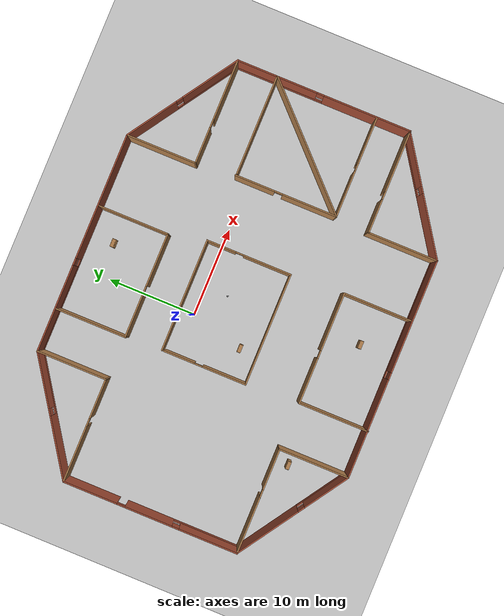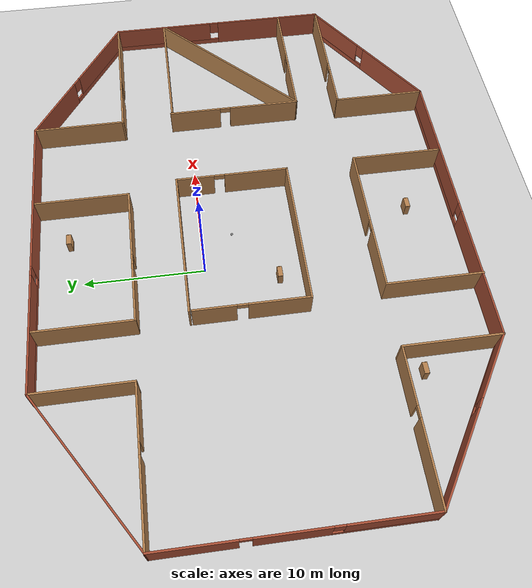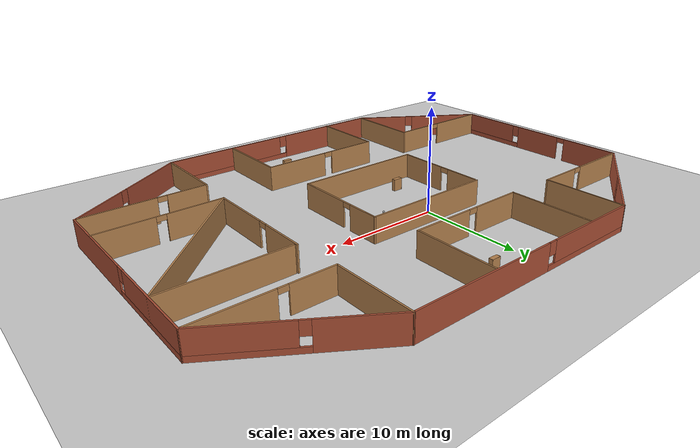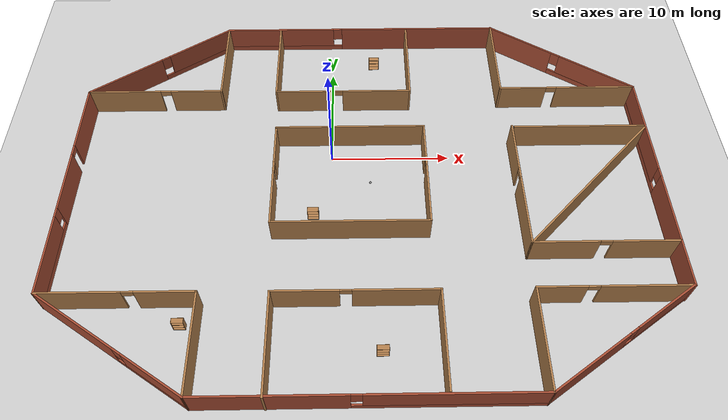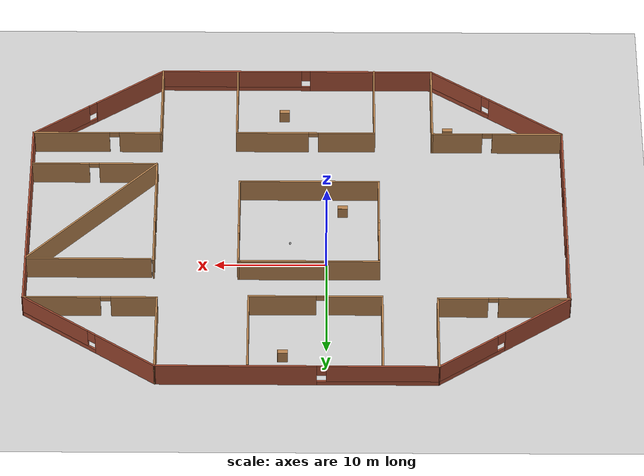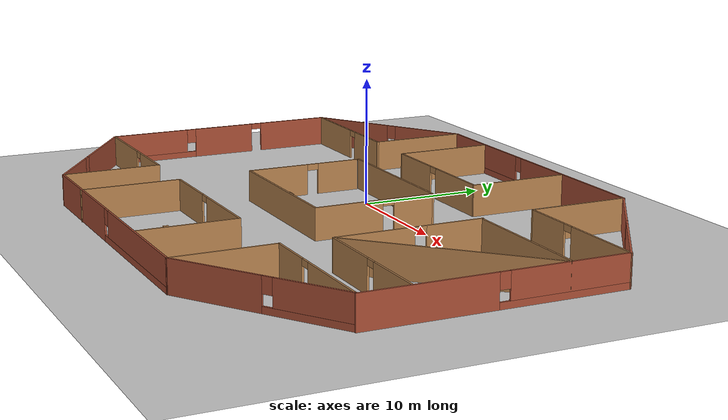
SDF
<sdf version="1.6">
 <world name="default">
  <plugin name="hello" filename="libhello.so"/>
  <model name="ground_plane">
   <static>1</static>
   <link name="link">
    <collision name="collision">
     <geometry><plane><normal>0 0 1</normal><size>100 100</size></plane></geometry>
     <surface><friction><ode><mu>100</mu><mu2>50</mu2></ode></friction></surface>
    </collision>
    <visual name="visual">
     <cast_shadows>0</cast_shadows>
     <geometry><plane><normal>0 0 1</normal><size>100 100</size></plane></geometry>
     <material>
      <script><uri>file://media/materials/scripts/gazebo.material</uri><name>Gazebo/Grey</name></script>
     </material>
    </visual>
   </link>
  </model>
  <gravity>0 0 -9.8</gravity>
  <magnetic_field>6e-06 2.3e-05 -4.2e-05</magnetic_field>
  <atmosphere type="adiabatic"/>
  <physics name="default_physics" default="0" type="ode">
   <max_step_size>0.001</max_step_size>
   <real_time_factor>1</real_time_factor>
   <real_time_update_rate>1000</real_time_update_rate>
  </physics>
  <scene><ambient>0.4 0.4 0.4 1</ambient><background>0.7 0.7 0.7 1</background><shadows>1</shadows></scene>
  <spherical_coordinates>
   <surface_model>EARTH_WGS84</surface_model>
   <latitude_deg>0</latitude_deg>
   <longitude_deg>0</longitude_deg>
   <elevation>0</elevation>
   <heading_deg>0</heading_deg>
  </spherical_coordinates>
  <model name="structure">
   <pose>2.6615 -4.00982 0 0 -0 0</pose>
   <link name="Wall_0">
    <pose>-24.193 0.018661 0 0 0 -1.5708</pose>
    <visual name="Wall_0_Visual_0">
     <pose>-6.90802 0 1.25 0 -0 0</pose>
     <geometry><box><size>6.18397 0.15 2.5</size></box></geometry>
     <material>
      <script><uri>file://media/materials/scripts/gazebo.material</uri><name>Gazebo/Bricks</name></script>
      <ambient>1 1 1 1</ambient>
     </material>
    </visual>
    <collision name="Wall_0_Collision_0">
     <geometry><box><size>6.18397 0.15 2.5</size></box></geometry>
     <pose>-6.90802 0 1.25 0 -0 0</pose>
    </collision>
    <visual name="Wall_0_Visual_1">
     <pose>-0.221667 0 1.25 0 -0 0</pose>
     <geometry><box><size>5.38873 0.15 2.5</size></box></geometry>
     <material>
      <script><uri>file://media/materials/scripts/gazebo.material</uri><name>Gazebo/Bricks</name></script>
      <ambient>1 1 1 1</ambient>
     </material>
    </visual>
    <collision name="Wall_0_Collision_1">
     <geometry><box><size>5.38873 0.15 2.5</size></box></geometry>
     <pose>-0.221667 0 1.25 0 -0 0</pose>
    </collision>
    <visual name="Wall_0_Visual_2">
     <pose>6.23635 0 0.25 0 -0 0</pose>
     <geometry><box><size>7.5273 0.15 0.5</size></box></geometry>
     <material>
      <script><uri>file://media/materials/scripts/gazebo.material</uri><name>Gazebo/Bricks</name></script>
      <ambient>1 1 1 1</ambient>
     </material>
    </visual>
    <collision name="Wall_0_Collision_2">
     <geometry><box><size>7.5273 0.15 0.5</size></box></geometry>
     <pose>6.23635 0 0.25 0 -0 0</pose>
    </collision>
    <visual name="Wall_0_Visual_3">
     <pose>6.63635 0 1.5 0 -0 0</pose>
     <geometry><box><size>6.7273 0.15 2</size></box></geometry>
     <material>
      <script><uri>file://media/materials/scripts/gazebo.material</uri><name>Gazebo/Bricks</name></script>
      <ambient>1 1 1 1</ambient>
     </material>
    </visual>
    <collision name="Wall_0_Collision_3">
     <geometry><box><size>6.7273 0.15 2</size></box></geometry>
     <pose>6.63635 0 1.5 0 -0 0</pose>
    </collision>
    <visual name="Wall_0_Visual_4">
     <pose>2.8727 0 1.9 0 -0 0</pose>
     <geometry><box><size>0.8 0.15 1.2</size></box></geometry>
     <material>
      <script><uri>file://media/materials/scripts/gazebo.material</uri><name>Gazebo/Bricks</name></script>
      <ambient>1 1 1 1</ambient>
     </material>
    </visual>
    <collision name="Wall_0_Collision_4">
     <geometry><box><size>0.8 0.15 1.2</size></box></geometry>
     <pose>2.8727 0 1.9 0 -0 0</pose>
    </collision>
    <visual name="Wall_0_Visual_5">
     <pose>-3.36603 0 2.25 0 -0 0</pose>
     <geometry><box><size>0.9 0.15 0.5</size></box></geometry>
     <material>
      <script><uri>file://media/materials/scripts/gazebo.material</uri><name>Gazebo/Bricks</name></script>
      <ambient>1 1 1 1</ambient>
     </material>
    </visual>
    <collision name="Wall_0_Collision_5">
     <geometry><box><size>0.9 0.15 0.5</size></box></geometry>
     <pose>-3.36603 0 2.25 0 -0 0</pose>
    </collision>
   </link>
   <link name="Wall_11">
    <pose>0.082031 -17.7563 0 0 -0 0</pose>
    <visual name="Wall_11_Visual_0">
     <pose>-6.85381 0 1.25 0 -0 0</pose>
     <geometry><box><size>11.2924 0.15 2.5</size></box></geometry>
     <material>
      <script><uri>file://media/materials/scripts/gazebo.material</uri><name>Gazebo/Bricks</name></script>
      <ambient>1 1 1 1</ambient>
     </material>
    </visual>
    <collision name="Wall_11_Collision_0">
     <geometry><box><size>11.2924 0.15 2.5</size></box></geometry>
     <pose>-6.85381 0 1.25 0 -0 0</pose>
    </collision>
    <visual name="Wall_11_Visual_1">
     <pose>5.64619 0 0.25 0 -0 0</pose>
     <geometry><box><size>13.7076 0.15 0.5</size></box></geometry>
     <material>
      <script><uri>file://media/materials/scripts/gazebo.material</uri><name>Gazebo/Bricks</name></script>
      <ambient>1 1 1 1</ambient>
     </material>
    </visual>
    <collision name="Wall_11_Collision_1">
     <geometry><box><size>13.7076 0.15 0.5</size></box></geometry>
     <pose>5.64619 0 0.25 0 -0 0</pose>
    </collision>
    <visual name="Wall_11_Visual_2">
     <pose>6.04619 0 1.5 0 -0 0</pose>
     <geometry><box><size>12.9076 0.15 2</size></box></geometry>
     <material>
      <script><uri>file://media/materials/scripts/gazebo.material</uri><name>Gazebo/Bricks</name></script>
      <ambient>1 1 1 1</ambient>
     </material>
    </visual>
    <collision name="Wall_11_Collision_2">
     <geometry><box><size>12.9076 0.15 2</size></box></geometry>
     <pose>6.04619 0 1.5 0 -0 0</pose>
    </collision>
    <visual name="Wall_11_Visual_3">
     <pose>-0.807615 0 1.9 0 -0 0</pose>
     <geometry><box><size>0.8 0.15 1.2</size></box></geometry>
     <material>
      <script><uri>file://media/materials/scripts/gazebo.material</uri><name>Gazebo/Bricks</name></script>
      <ambient>1 1 1 1</ambient>
     </material>
    </visual>
    <collision name="Wall_11_Collision_3">
     <geometry><box><size>0.8 0.15 1.2</size></box></geometry>
     <pose>-0.807615 0 1.9 0 -0 0</pose>
    </collision>
   </link>
   <link name="Wall_17">
    <pose>24.1932 0.018623 0 0 -0 1.57081</pose>
    <visual name="Wall_17_Visual_0">
     <pose>-4.99968 0 1.25 0 -0 0</pose>
     <geometry><box><size>10.0006 0.15 2.5</size></box></geometry>
     <material>
      <script><uri>file://media/materials/scripts/gazebo.material</uri><name>Gazebo/Bricks</name></script>
      <ambient>1 1 1 1</ambient>
     </material>
    </visual>
    <collision name="Wall_17_Collision_0">
     <geometry><box><size>10.0006 0.15 2.5</size></box></geometry>
     <pose>-4.99968 0 1.25 0 -0 0</pose>
    </collision>
    <visual name="Wall_17_Visual_1">
     <pose>5.00032 0 0.25 0 -0 0</pose>
     <geometry><box><size>9.99935 0.15 0.5</size></box></geometry>
     <material>
      <script><uri>file://media/materials/scripts/gazebo.material</uri><name>Gazebo/Bricks</name></script>
      <ambient>1 1 1 1</ambient>
     </material>
    </visual>
    <collision name="Wall_17_Collision_1">
     <geometry><box><size>9.99935 0.15 0.5</size></box></geometry>
     <pose>5.00032 0 0.25 0 -0 0</pose>
    </collision>
    <visual name="Wall_17_Visual_2">
     <pose>5.40032 0 1.5 0 -0 0</pose>
     <geometry><box><size>9.19935 0.15 2</size></box></geometry>
     <material>
      <script><uri>file://media/materials/scripts/gazebo.material</uri><name>Gazebo/Bricks</name></script>
      <ambient>1 1 1 1</ambient>
     </material>
    </visual>
    <collision name="Wall_17_Collision_2">
     <geometry><box><size>9.19935 0.15 2</size></box></geometry>
     <pose>5.40032 0 1.5 0 -0 0</pose>
    </collision>
    <visual name="Wall_17_Visual_3">
     <pose>0.400646 0 1.9 0 -0 0</pose>
     <geometry><box><size>0.8 0.15 1.2</size></box></geometry>
     <material>
      <script><uri>file://media/materials/scripts/gazebo.material</uri><name>Gazebo/Bricks</name></script>
      <ambient>1 1 1 1</ambient>
     </material>
    </visual>
    <collision name="Wall_17_Collision_3">
     <geometry><box><size>0.8 0.15 1.2</size></box></geometry>
     <pose>0.400646 0 1.9 0 -0 0</pose>
    </collision>
   </link>
   <link name="Wall_19">
    <collision name="Wall_19_Collision">
     <geometry><box><size>8 0.15 2.5</size></box></geometry>
     <pose>0 0 1.25 0 -0 0</pose>
    </collision>
    <visual name="Wall_19_Visual">
     <pose>0 0 1.25 0 -0 0</pose>
     <geometry><box><size>8 0.15 2.5</size></box></geometry>
     <material>
      <script><uri>file://media/materials/scripts/gazebo.material</uri><name>Gazebo/Wood</name></script>
      <ambient>1 1 1 1</ambient>
     </material>
    </visual>
    <pose>12.507 -13.8313 0 0 -0 1.5708</pose>
   </link>
   <link name="Wall_21">
    <pose>18.307 -9.90634 0 0 -0 0</pose>
    <visual name="Wall_21_Visual_0">
     <pose>-3.92627 0 1.25 0 -0 0</pose>
     <geometry><box><size>3.89747 0.15 2.5</size></box></geometry>
     <material>
      <script><uri>file://media/materials/scripts/gazebo.material</uri><name>Gazebo/Wood</name></script>
      <ambient>1 1 1 1</ambient>
     </material>
    </visual>
    <collision name="Wall_21_Collision_0">
     <geometry><box><size>3.89747 0.15 2.5</size></box></geometry>
     <pose>-3.92627 0 1.25 0 -0 0</pose>
    </collision>
    <visual name="Wall_21_Visual_1">
     <pose>2.39873 0 1.25 0 -0 0</pose>
     <geometry><box><size>6.95253 0.15 2.5</size></box></geometry>
     <material>
      <script><uri>file://media/materials/scripts/gazebo.material</uri><name>Gazebo/Wood</name></script>
      <ambient>1 1 1 1</ambient>
     </material>
    </visual>
    <collision name="Wall_21_Collision_1">
     <geometry><box><size>6.95253 0.15 2.5</size></box></geometry>
     <pose>2.39873 0 1.25 0 -0 0</pose>
    </collision>
    <visual name="Wall_21_Visual_2">
     <pose>-1.52753 0 2.25 0 -0 0</pose>
     <geometry><box><size>0.9 0.15 0.5</size></box></geometry>
     <material>
      <script><uri>file://media/materials/scripts/gazebo.material</uri><name>Gazebo/Wood</name></script>
      <ambient>1 1 1 1</ambient>
     </material>
    </visual>
    <collision name="Wall_21_Collision_2">
     <geometry><box><size>0.9 0.15 0.5</size></box></geometry>
     <pose>-1.52753 0 2.25 0 -0 0</pose>
    </collision>
   </link>
   <link name="Wall_23">
    <pose>18.2681 9.94359 0 0 -0 3.14159</pose>
    <visual name="Wall_23_Visual_0">
     <pose>-2.5252 0 1.25 0 -0 0</pose>
     <geometry><box><size>6.94961 0.15 2.5</size></box></geometry>
     <material>
      <script><uri>file://media/materials/scripts/gazebo.material</uri><name>Gazebo/Wood</name></script>
      <ambient>1 1 1 1</ambient>
     </material>
    </visual>
    <collision name="Wall_23_Collision_0">
     <geometry><box><size>6.94961 0.15 2.5</size></box></geometry>
     <pose>-2.5252 0 1.25 0 -0 0</pose>
    </collision>
    <visual name="Wall_23_Visual_1">
     <pose>3.9248 0 1.25 0 -0 0</pose>
     <geometry><box><size>4.15039 0.15 2.5</size></box></geometry>
     <material>
      <script><uri>file://media/materials/scripts/gazebo.material</uri><name>Gazebo/Wood</name></script>
      <ambient>1 1 1 1</ambient>
     </material>
    </visual>
    <collision name="Wall_23_Collision_1">
     <geometry><box><size>4.15039 0.15 2.5</size></box></geometry>
     <pose>3.9248 0 1.25 0 -0 0</pose>
    </collision>
    <visual name="Wall_23_Visual_2">
     <pose>1.3996 0 2.25 0 -0 0</pose>
     <geometry><box><size>0.9 0.15 0.5</size></box></geometry>
     <material>
      <script><uri>file://media/materials/scripts/gazebo.material</uri><name>Gazebo/Wood</name></script>
      <ambient>1 1 1 1</ambient>
     </material>
    </visual>
    <collision name="Wall_23_Collision_2">
     <geometry><box><size>0.9 0.15 0.5</size></box></geometry>
     <pose>1.3996 0 2.25 0 -0 0</pose>
    </collision>
   </link>
   <link name="Wall_27">
    <collision name="Wall_27_Collision">
     <geometry><box><size>8 0.15 2.5</size></box></geometry>
     <pose>0 0 1.25 0 -0 0</pose>
    </collision>
    <visual name="Wall_27_Visual">
     <pose>0 0 1.25 0 -0 0</pose>
     <geometry><box><size>8 0.15 2.5</size></box></geometry>
     <material>
      <script><uri>file://media/materials/scripts/gazebo.material</uri><name>Gazebo/Wood</name></script>
      <ambient>1 1 1 1</ambient>
     </material>
    </visual>
    <pose>12.3431 13.8686 0 0 -0 1.5708</pose>
   </link>
   <link name="Wall_29">
    <pose>-0.081897 17.7936 0 0 -0 3.14159</pose>
    <visual name="Wall_29_Visual_0">
     <pose>-5.3765 0 1.25 0 -0 0</pose>
     <geometry><box><size>14.247 0.15 2.5</size></box></geometry>
     <material>
      <script><uri>file://media/materials/scripts/gazebo.material</uri><name>Gazebo/Bricks</name></script>
      <ambient>1 1 1 1</ambient>
     </material>
    </visual>
    <collision name="Wall_29_Collision_0">
     <geometry><box><size>14.247 0.15 2.5</size></box></geometry>
     <pose>-5.3765 0 1.25 0 -0 0</pose>
    </collision>
    <visual name="Wall_29_Visual_1">
     <pose>7.1235 0 0.25 0 -0 0</pose>
     <geometry><box><size>10.753 0.15 0.5</size></box></geometry>
     <material>
      <script><uri>file://media/materials/scripts/gazebo.material</uri><name>Gazebo/Bricks</name></script>
      <ambient>1 1 1 1</ambient>
     </material>
    </visual>
    <collision name="Wall_29_Collision_1">
     <geometry><box><size>10.753 0.15 0.5</size></box></geometry>
     <pose>7.1235 0 0.25 0 -0 0</pose>
    </collision>
    <visual name="Wall_29_Visual_2">
     <pose>7.5235 0 1.5 0 -0 0</pose>
     <geometry><box><size>9.953 0.15 2</size></box></geometry>
     <material>
      <script><uri>file://media/materials/scripts/gazebo.material</uri><name>Gazebo/Bricks</name></script>
      <ambient>1 1 1 1</ambient>
     </material>
    </visual>
    <collision name="Wall_29_Collision_2">
     <geometry><box><size>9.953 0.15 2</size></box></geometry>
     <pose>7.5235 0 1.5 0 -0 0</pose>
    </collision>
    <visual name="Wall_29_Visual_3">
     <pose>2.147 0 1.9 0 -0 0</pose>
     <geometry><box><size>0.8 0.15 1.2</size></box></geometry>
     <material>
      <script><uri>file://media/materials/scripts/gazebo.material</uri><name>Gazebo/Bricks</name></script>
      <ambient>1 1 1 1</ambient>
     </material>
    </visual>
    <collision name="Wall_29_Collision_3">
     <geometry><box><size>0.8 0.15 1.2</size></box></geometry>
     <pose>2.147 0 1.9 0 -0 0</pose>
    </collision>
   </link>
   <link name="Wall_31">
    <collision name="Wall_31_Collision">
     <geometry><box><size>8 0.15 2.5</size></box></geometry>
     <pose>0 0 1.25 0 -0 0</pose>
    </collision>
    <visual name="Wall_31_Visual">
     <pose>0 0 1.25 0 -0 0</pose>
     <geometry><box><size>8 0.15 2.5</size></box></geometry>
     <material>
      <script><uri>file://media/materials/scripts/gazebo.material</uri><name>Gazebo/Wood</name></script>
      <ambient>1 1 1 1</ambient>
     </material>
    </visual>
    <pose>-12.5069 13.8686 0 0 0 -1.5708</pose>
   </link>
   <link name="Wall_33">
    <pose>-18.3499 9.94362 0 0 -0 3.14159</pose>
    <visual name="Wall_33_Visual_0">
     <pose>-3.649 0 1.25 0 -0 0</pose>
     <geometry><box><size>4.53806 0.15 2.5</size></box></geometry>
     <material>
      <script><uri>file://media/materials/scripts/gazebo.material</uri><name>Gazebo/Wood</name></script>
      <ambient>1 1 1 1</ambient>
     </material>
    </visual>
    <collision name="Wall_33_Collision_0">
     <geometry><box><size>4.53806 0.15 2.5</size></box></geometry>
     <pose>-3.649 0 1.25 0 -0 0</pose>
    </collision>
    <visual name="Wall_33_Visual_1">
     <pose>2.71903 0 1.25 0 -0 0</pose>
     <geometry><box><size>6.39801 0.15 2.5</size></box></geometry>
     <material>
      <script><uri>file://media/materials/scripts/gazebo.material</uri><name>Gazebo/Wood</name></script>
      <ambient>1 1 1 1</ambient>
     </material>
    </visual>
    <collision name="Wall_33_Collision_1">
     <geometry><box><size>6.39801 0.15 2.5</size></box></geometry>
     <pose>2.71903 0 1.25 0 -0 0</pose>
    </collision>
    <visual name="Wall_33_Visual_2">
     <pose>-0.929972 0 2.25 0 -0 0</pose>
     <geometry><box><size>0.9 0.15 0.5</size></box></geometry>
     <material>
      <script><uri>file://media/materials/scripts/gazebo.material</uri><name>Gazebo/Wood</name></script>
      <ambient>1 1 1 1</ambient>
     </material>
    </visual>
    <collision name="Wall_33_Collision_2">
     <geometry><box><size>0.9 0.15 0.5</size></box></geometry>
     <pose>-0.929972 0 2.25 0 -0 0</pose>
    </collision>
   </link>
   <link name="Wall_35">
    <pose>-18.3499 13.8686 0 0 -0 0.591502</pose>
    <visual name="Wall_35_Visual_0">
     <pose>-3.5498 0 1.25 0 -0 0</pose>
     <geometry><box><size>7.12825 0.15 2.5</size></box></geometry>
     <material>
      <script><uri>file://media/materials/scripts/gazebo.material</uri><name>Gazebo/Bricks</name></script>
      <ambient>1 1 1 1</ambient>
     </material>
    </visual>
    <collision name="Wall_35_Collision_0">
     <geometry><box><size>7.12825 0.15 2.5</size></box></geometry>
     <pose>-3.5498 0 1.25 0 -0 0</pose>
    </collision>
    <visual name="Wall_35_Visual_1">
     <pose>3.56413 0 0.25 0 -0 0</pose>
     <geometry><box><size>7.09959 0.15 0.5</size></box></geometry>
     <material>
      <script><uri>file://media/materials/scripts/gazebo.material</uri><name>Gazebo/Bricks</name></script>
      <ambient>1 1 1 1</ambient>
     </material>
    </visual>
    <collision name="Wall_35_Collision_1">
     <geometry><box><size>7.09959 0.15 0.5</size></box></geometry>
     <pose>3.56413 0 0.25 0 -0 0</pose>
    </collision>
    <visual name="Wall_35_Visual_2">
     <pose>3.96413 0 1.5 0 -0 0</pose>
     <geometry><box><size>6.29959 0.15 2</size></box></geometry>
     <material>
      <script><uri>file://media/materials/scripts/gazebo.material</uri><name>Gazebo/Bricks</name></script>
      <ambient>1 1 1 1</ambient>
     </material>
    </visual>
    <collision name="Wall_35_Collision_2">
     <geometry><box><size>6.29959 0.15 2</size></box></geometry>
     <pose>3.96413 0 1.5 0 -0 0</pose>
    </collision>
    <visual name="Wall_35_Visual_3">
     <pose>0.414331 0 1.9 0 -0 0</pose>
     <geometry><box><size>0.8 0.15 1.2</size></box></geometry>
     <material>
      <script><uri>file://media/materials/scripts/gazebo.material</uri><name>Gazebo/Bricks</name></script>
      <ambient>1 1 1 1</ambient>
     </material>
    </visual>
    <collision name="Wall_35_Collision_3">
     <geometry><box><size>0.8 0.15 1.2</size></box></geometry>
     <pose>0.414331 0 1.9 0 -0 0</pose>
    </collision>
   </link>
   <link name="Wall_37">
    <pose>18.2681 13.8686 0 0 0 -0.585076</pose>
    <visual name="Wall_37_Visual_0">
     <pose>-3.98995 0 1.25 0 -0 0</pose>
     <geometry><box><size>6.38435 0.15 2.5</size></box></geometry>
     <material>
      <script><uri>file://media/materials/scripts/gazebo.material</uri><name>Gazebo/Bricks</name></script>
      <ambient>1 1 1 1</ambient>
     </material>
    </visual>
    <collision name="Wall_37_Collision_0">
     <geometry><box><size>6.38435 0.15 2.5</size></box></geometry>
     <pose>-3.98995 0 1.25 0 -0 0</pose>
    </collision>
    <visual name="Wall_37_Visual_1">
     <pose>3.19217 0 0.25 0 -0 0</pose>
     <geometry><box><size>7.97991 0.15 0.5</size></box></geometry>
     <material>
      <script><uri>file://media/materials/scripts/gazebo.material</uri><name>Gazebo/Bricks</name></script>
      <ambient>1 1 1 1</ambient>
     </material>
    </visual>
    <collision name="Wall_37_Collision_1">
     <geometry><box><size>7.97991 0.15 0.5</size></box></geometry>
     <pose>3.19217 0 0.25 0 -0 0</pose>
    </collision>
    <visual name="Wall_37_Visual_2">
     <pose>3.59217 0 1.5 0 -0 0</pose>
     <geometry><box><size>7.17991 0.15 2</size></box></geometry>
     <material>
      <script><uri>file://media/materials/scripts/gazebo.material</uri><name>Gazebo/Bricks</name></script>
      <ambient>1 1 1 1</ambient>
     </material>
    </visual>
    <collision name="Wall_37_Collision_2">
     <geometry><box><size>7.17991 0.15 2</size></box></geometry>
     <pose>3.59217 0 1.5 0 -0 0</pose>
    </collision>
    <visual name="Wall_37_Visual_3">
     <pose>-0.397779 0 1.9 0 -0 0</pose>
     <geometry><box><size>0.8 0.15 1.2</size></box></geometry>
     <material>
      <script><uri>file://media/materials/scripts/gazebo.material</uri><name>Gazebo/Bricks</name></script>
      <ambient>1 1 1 1</ambient>
     </material>
    </visual>
    <collision name="Wall_37_Collision_3">
     <geometry><box><size>0.8 0.15 1.2</size></box></geometry>
     <pose>-0.397779 0 1.9 0 -0 0</pose>
    </collision>
   </link>
   <link name="Wall_40">
    <pose>18.307 -13.8313 0 0 -0 0.594933</pose>
    <visual name="Wall_40_Visual_0">
     <pose>-3.38232 0 1.25 0 -0 0</pose>
     <geometry><box><size>7.39187 0.15 2.5</size></box></geometry>
     <material>
      <script><uri>file://media/materials/scripts/gazebo.material</uri><name>Gazebo/Bricks</name></script>
      <ambient>1 1 1 1</ambient>
     </material>
    </visual>
    <collision name="Wall_40_Collision_0">
     <geometry><box><size>7.39187 0.15 2.5</size></box></geometry>
     <pose>-3.38232 0 1.25 0 -0 0</pose>
    </collision>
    <visual name="Wall_40_Visual_1">
     <pose>3.69593 0 0.25 0 -0 0</pose>
     <geometry><box><size>6.76465 0.15 0.5</size></box></geometry>
     <material>
      <script><uri>file://media/materials/scripts/gazebo.material</uri><name>Gazebo/Bricks</name></script>
      <ambient>1 1 1 1</ambient>
     </material>
    </visual>
    <collision name="Wall_40_Collision_1">
     <geometry><box><size>6.76465 0.15 0.5</size></box></geometry>
     <pose>3.69593 0 0.25 0 -0 0</pose>
    </collision>
    <visual name="Wall_40_Visual_2">
     <pose>4.09593 0 1.5 0 -0 0</pose>
     <geometry><box><size>5.96465 0.15 2</size></box></geometry>
     <material>
      <script><uri>file://media/materials/scripts/gazebo.material</uri><name>Gazebo/Bricks</name></script>
      <ambient>1 1 1 1</ambient>
     </material>
    </visual>
    <collision name="Wall_40_Collision_2">
     <geometry><box><size>5.96465 0.15 2</size></box></geometry>
     <pose>4.09593 0 1.5 0 -0 0</pose>
    </collision>
    <visual name="Wall_40_Visual_3">
     <pose>0.713612 0 1.9 0 -0 0</pose>
     <geometry><box><size>0.8 0.15 1.2</size></box></geometry>
     <material>
      <script><uri>file://media/materials/scripts/gazebo.material</uri><name>Gazebo/Bricks</name></script>
      <ambient>1 1 1 1</ambient>
     </material>
    </visual>
    <collision name="Wall_40_Collision_3">
     <geometry><box><size>0.8 0.15 1.2</size></box></geometry>
     <pose>0.713612 0 1.9 0 -0 0</pose>
    </collision>
   </link>
   <link name="Wall_43">
    <pose>-18.268 -13.8313 0 0 0 -0.585076</pose>
    <visual name="Wall_43_Visual_0">
     <pose>-3.22778 0 1.25 0 -0 0</pose>
     <geometry><box><size>7.9087 0.15 2.5</size></box></geometry>
     <material>
      <script><uri>file://media/materials/scripts/gazebo.material</uri><name>Gazebo/Bricks</name></script>
      <ambient>1 1 1 1</ambient>
     </material>
    </visual>
    <collision name="Wall_43_Collision_0">
     <geometry><box><size>7.9087 0.15 2.5</size></box></geometry>
     <pose>-3.22778 0 1.25 0 -0 0</pose>
    </collision>
    <visual name="Wall_43_Visual_1">
     <pose>3.95435 0 0.25 0 -0 0</pose>
     <geometry><box><size>6.45555 0.15 0.5</size></box></geometry>
     <material>
      <script><uri>file://media/materials/scripts/gazebo.material</uri><name>Gazebo/Bricks</name></script>
      <ambient>1 1 1 1</ambient>
     </material>
    </visual>
    <collision name="Wall_43_Collision_1">
     <geometry><box><size>6.45555 0.15 0.5</size></box></geometry>
     <pose>3.95435 0 0.25 0 -0 0</pose>
    </collision>
    <visual name="Wall_43_Visual_2">
     <pose>4.35435 0 1.5 0 -0 0</pose>
     <geometry><box><size>5.65555 0.15 2</size></box></geometry>
     <material>
      <script><uri>file://media/materials/scripts/gazebo.material</uri><name>Gazebo/Bricks</name></script>
      <ambient>1 1 1 1</ambient>
     </material>
    </visual>
    <collision name="Wall_43_Collision_2">
     <geometry><box><size>5.65555 0.15 2</size></box></geometry>
     <pose>4.35435 0 1.5 0 -0 0</pose>
    </collision>
    <visual name="Wall_43_Visual_3">
     <pose>1.12657 0 1.9 0 -0 0</pose>
     <geometry><box><size>0.8 0.15 1.2</size></box></geometry>
     <material>
      <script><uri>file://media/materials/scripts/gazebo.material</uri><name>Gazebo/Bricks</name></script>
      <ambient>1 1 1 1</ambient>
     </material>
    </visual>
    <collision name="Wall_43_Collision_3">
     <geometry><box><size>0.8 0.15 1.2</size></box></geometry>
     <pose>1.12657 0 1.9 0 -0 0</pose>
    </collision>
   </link>
   <link name="Wall_46">
    <collision name="Wall_46_Collision">
     <geometry><box><size>8 0.15 2.5</size></box></geometry>
     <pose>0 0 1.25 0 -0 0</pose>
    </collision>
    <visual name="Wall_46_Visual">
     <pose>0 0 1.25 0 -0 0</pose>
     <geometry><box><size>8 0.15 2.5</size></box></geometry>
     <material>
      <script><uri>file://media/materials/scripts/gazebo.material</uri><name>Gazebo/Wood</name></script>
      <ambient>1 1 1 1</ambient>
     </material>
    </visual>
    <pose>-7.03517 -13.8977 0 0 -0 1.5708</pose>
   </link>
   <link name="Wall_47">
    <pose>-0.735172 -9.97266 0 0 -0 0</pose>
    <visual name="Wall_47_Visual_0">
     <pose>-3.7685 0 1.25 0 -0 0</pose>
     <geometry><box><size>5.213 0.15 2.5</size></box></geometry>
     <material>
      <script><uri>file://media/materials/scripts/gazebo.material</uri><name>Gazebo/Wood</name></script>
      <ambient>0.996078 0.47451 0.0196078 1</ambient>
     </material>
    </visual>
    <collision name="Wall_47_Collision_0">
     <geometry><box><size>5.213 0.15 2.5</size></box></geometry>
     <pose>-3.7685 0 1.25 0 -0 0</pose>
    </collision>
    <visual name="Wall_47_Visual_1">
     <pose>3.0565 0 1.25 0 -0 0</pose>
     <geometry><box><size>6.637 0.15 2.5</size></box></geometry>
     <material>
      <script><uri>file://media/materials/scripts/gazebo.material</uri><name>Gazebo/Wood</name></script>
      <ambient>0.996078 0.47451 0.0196078 1</ambient>
     </material>
    </visual>
    <collision name="Wall_47_Collision_1">
     <geometry><box><size>6.637 0.15 2.5</size></box></geometry>
     <pose>3.0565 0 1.25 0 -0 0</pose>
    </collision>
    <visual name="Wall_47_Visual_2">
     <pose>-0.712002 0 2.25 0 -0 0</pose>
     <geometry><box><size>0.9 0.15 0.5</size></box></geometry>
     <material>
      <script><uri>file://media/materials/scripts/gazebo.material</uri><name>Gazebo/Wood</name></script>
      <ambient>0.996078 0.47451 0.0196078 1</ambient>
     </material>
    </visual>
    <collision name="Wall_47_Collision_2">
     <geometry><box><size>0.9 0.15 0.5</size></box></geometry>
     <pose>-0.712002 0 2.25 0 -0 0</pose>
    </collision>
   </link>
   <link name="Wall_48">
    <collision name="Wall_48_Collision">
     <geometry><box><size>7.75 0.15 2.5</size></box></geometry>
     <pose>0 0 1.25 0 -0 0</pose>
    </collision>
    <visual name="Wall_48_Visual">
     <pose>0 0 1.25 0 -0 0</pose>
     <geometry><box><size>7.75 0.15 2.5</size></box></geometry>
     <material>
      <script><uri>file://media/materials/scripts/gazebo.material</uri><name>Gazebo/Wood</name></script>
      <ambient>1 1 1 1</ambient>
     </material>
    </visual>
    <pose>5.56483 -13.7727 0 0 0 -1.5708</pose>
   </link>
   <link name="Wall_51">
    <pose>12.7824 -0.282558 0 0 0 -1.5708</pose>
    <visual name="Wall_51_Visual_0">
     <pose>-3.58359 0 1.25 0 -0 0</pose>
     <geometry><box><size>4.58282 0.15 2.5</size></box></geometry>
     <material>
      <script><uri>file://media/materials/scripts/gazebo.material</uri><name>Gazebo/Wood</name></script>
      <ambient>1 1 1 1</ambient>
     </material>
    </visual>
    <collision name="Wall_51_Collision_0">
     <geometry><box><size>4.58282 0.15 2.5</size></box></geometry>
     <pose>-3.58359 0 1.25 0 -0 0</pose>
    </collision>
    <visual name="Wall_51_Visual_1">
     <pose>2.74141 0 1.25 0 -0 0</pose>
     <geometry><box><size>6.26718 0.15 2.5</size></box></geometry>
     <material>
      <script><uri>file://media/materials/scripts/gazebo.material</uri><name>Gazebo/Wood</name></script>
      <ambient>1 1 1 1</ambient>
     </material>
    </visual>
    <collision name="Wall_51_Collision_1">
     <geometry><box><size>6.26718 0.15 2.5</size></box></geometry>
     <pose>2.74141 0 1.25 0 -0 0</pose>
    </collision>
    <visual name="Wall_51_Visual_2">
     <pose>-0.842176 0 2.25 0 -0 0</pose>
     <geometry><box><size>0.9 0.15 0.5</size></box></geometry>
     <material>
      <script><uri>file://media/materials/scripts/gazebo.material</uri><name>Gazebo/Wood</name></script>
      <ambient>1 1 1 1</ambient>
     </material>
    </visual>
    <collision name="Wall_51_Collision_2">
     <geometry><box><size>0.9 0.15 0.5</size></box></geometry>
     <pose>-0.842176 0 2.25 0 -0 0</pose>
    </collision>
   </link>
   <link name="Wall_52">
    <pose>18.4574 -6.08256 0 0 -0 0</pose>
    <visual name="Wall_52_Visual_0">
     <pose>-3.09005 0 1.25 0 -0 0</pose>
     <geometry><box><size>5.3199 0.15 2.5</size></box></geometry>
     <material>
      <script><uri>file://media/materials/scripts/gazebo.material</uri><name>Gazebo/Wood</name></script>
      <ambient>1 1 1 1</ambient>
     </material>
    </visual>
    <collision name="Wall_52_Collision_0">
     <geometry><box><size>5.3199 0.15 2.5</size></box></geometry>
     <pose>-3.09005 0 1.25 0 -0 0</pose>
    </collision>
    <visual name="Wall_52_Visual_1">
     <pose>3.10995 0 1.25 0 -0 0</pose>
     <geometry><box><size>5.2801 0.15 2.5</size></box></geometry>
     <material>
      <script><uri>file://media/materials/scripts/gazebo.material</uri><name>Gazebo/Wood</name></script>
      <ambient>1 1 1 1</ambient>
     </material>
    </visual>
    <collision name="Wall_52_Collision_1">
     <geometry><box><size>5.2801 0.15 2.5</size></box></geometry>
     <pose>3.10995 0 1.25 0 -0 0</pose>
    </collision>
    <visual name="Wall_52_Visual_2">
     <pose>0.019897 0 2.25 0 -0 0</pose>
     <geometry><box><size>0.9 0.15 0.5</size></box></geometry>
     <material>
      <script><uri>file://media/materials/scripts/gazebo.material</uri><name>Gazebo/Wood</name></script>
      <ambient>1 1 1 1</ambient>
     </material>
    </visual>
    <collision name="Wall_52_Collision_2">
     <geometry><box><size>0.9 0.15 0.5</size></box></geometry>
     <pose>0.019897 0 2.25 0 -0 0</pose>
    </collision>
   </link>
   <link name="Wall_54">
    <collision name="Wall_54_Collision">
     <geometry><box><size>8 0.15 2.5</size></box></geometry>
     <pose>0 0 1.25 0 -0 0</pose>
    </collision>
    <visual name="Wall_54_Visual">
     <pose>0 0 1.25 0 -0 0</pose>
     <geometry><box><size>8 0.15 2.5</size></box></geometry>
     <material>
      <script><uri>file://media/materials/scripts/gazebo.material</uri><name>Gazebo/Wood</name></script>
      <ambient>1 1 1 1</ambient>
     </material>
    </visual>
    <pose>-7.60444 13.6894 0 0 0 -1.5708</pose>
   </link>
   <link name="Wall_55">
    <pose>-1.67944 9.76445 0 0 -0 0</pose>
    <visual name="Wall_55_Visual_0">
     <pose>-3.47778 0 1.25 0 -0 0</pose>
     <geometry><box><size>5.04444 0.15 2.5</size></box></geometry>
     <material>
      <script><uri>file://media/materials/scripts/gazebo.material</uri><name>Gazebo/Wood</name></script>
      <ambient>0.996078 0.47451 0.0196078 1</ambient>
     </material>
    </visual>
    <collision name="Wall_55_Collision_0">
     <geometry><box><size>5.04444 0.15 2.5</size></box></geometry>
     <pose>-3.47778 0 1.25 0 -0 0</pose>
    </collision>
    <visual name="Wall_55_Visual_1">
     <pose>2.97222 0 1.25 0 -0 0</pose>
     <geometry><box><size>6.05556 0.15 2.5</size></box></geometry>
     <material>
      <script><uri>file://media/materials/scripts/gazebo.material</uri><name>Gazebo/Wood</name></script>
      <ambient>0.996078 0.47451 0.0196078 1</ambient>
     </material>
    </visual>
    <collision name="Wall_55_Collision_1">
     <geometry><box><size>6.05556 0.15 2.5</size></box></geometry>
     <pose>2.97222 0 1.25 0 -0 0</pose>
    </collision>
    <visual name="Wall_55_Visual_2">
     <pose>-0.505564 0 2.25 0 -0 0</pose>
     <geometry><box><size>0.9 0.15 0.5</size></box></geometry>
     <material>
      <script><uri>file://media/materials/scripts/gazebo.material</uri><name>Gazebo/Wood</name></script>
      <ambient>0.996078 0.47451 0.0196078 1</ambient>
     </material>
    </visual>
    <collision name="Wall_55_Collision_2">
     <geometry><box><size>0.9 0.15 0.5</size></box></geometry>
     <pose>-0.505564 0 2.25 0 -0 0</pose>
    </collision>
   </link>
   <link name="Wall_56">
    <collision name="Wall_56_Collision">
     <geometry><box><size>8 0.15 2.5</size></box></geometry>
     <pose>0 0 1.25 0 -0 0</pose>
    </collision>
    <visual name="Wall_56_Visual">
     <pose>0 0 1.25 0 -0 0</pose>
     <geometry><box><size>8 0.15 2.5</size></box></geometry>
     <material>
      <script><uri>file://media/materials/scripts/gazebo.material</uri><name>Gazebo/Wood</name></script>
      <ambient>1 1 1 1</ambient>
     </material>
    </visual>
    <pose>4.24556 13.6894 0 0 -0 1.5708</pose>
   </link>
   <link name="Wall_6">
    <pose>-18.268 -9.90634 0 0 -0 0</pose>
    <visual name="Wall_6_Visual_0">
     <pose>-2.77939 0 1.25 0 -0 0</pose>
     <geometry><box><size>6.44121 0.15 2.5</size></box></geometry>
     <material>
      <script><uri>file://media/materials/scripts/gazebo.material</uri><name>Gazebo/Wood</name></script>
      <ambient>1 1 1 1</ambient>
     </material>
    </visual>
    <collision name="Wall_6_Collision_0">
     <geometry><box><size>6.44121 0.15 2.5</size></box></geometry>
     <pose>-2.77939 0 1.25 0 -0 0</pose>
    </collision>
    <visual name="Wall_6_Visual_1">
     <pose>3.67061 0 1.25 0 -0 0</pose>
     <geometry><box><size>4.65879 0.15 2.5</size></box></geometry>
     <material>
      <script><uri>file://media/materials/scripts/gazebo.material</uri><name>Gazebo/Wood</name></script>
      <ambient>1 1 1 1</ambient>
     </material>
    </visual>
    <collision name="Wall_6_Collision_1">
     <geometry><box><size>4.65879 0.15 2.5</size></box></geometry>
     <pose>3.67061 0 1.25 0 -0 0</pose>
    </collision>
    <visual name="Wall_6_Visual_2">
     <pose>0.891212 0 2.25 0 -0 0</pose>
     <geometry><box><size>0.9 0.15 0.5</size></box></geometry>
     <material>
      <script><uri>file://media/materials/scripts/gazebo.material</uri><name>Gazebo/Wood</name></script>
      <ambient>1 1 1 1</ambient>
     </material>
    </visual>
    <collision name="Wall_6_Collision_2">
     <geometry><box><size>0.9 0.15 0.5</size></box></geometry>
     <pose>0.891212 0 2.25 0 -0 0</pose>
    </collision>
   </link>
   <link name="Wall_62">
    <collision name="Wall_62_Collision">
     <geometry><box><size>11.25 0.15 2.5</size></box></geometry>
     <pose>0 0 1.25 0 -0 0</pose>
    </collision>
    <visual name="Wall_62_Visual">
     <pose>0 0 1.25 0 -0 0</pose>
     <geometry><box><size>11.25 0.15 2.5</size></box></geometry>
     <material>
      <script><uri>file://media/materials/scripts/gazebo.material</uri><name>Gazebo/Wood</name></script>
      <ambient>1 1 1 1</ambient>
     </material>
    </visual>
    <pose>18.5715 5.42751 0 0 -0 0</pose>
   </link>
   <link name="Wall_64">
    <collision name="Wall_64_Collision">
     <geometry><box><size>16.25 0.15 2.5</size></box></geometry>
     <pose>0 0 1.25 0 -0 0</pose>
    </collision>
    <visual name="Wall_64_Visual">
     <pose>0 0 1.25 0 -0 0</pose>
     <geometry><box><size>16.25 0.15 2.5</size></box></geometry>
     <material>
      <script><uri>file://media/materials/scripts/gazebo.material</uri><name>Gazebo/Wood</name></script>
      <ambient>0.996078 0.47451 0.0196078 1</ambient>
     </material>
    </visual>
    <pose>18.4746 -0.390349 0 0 -0 0.785398</pose>
   </link>
   <link name="Wall_66">
    <pose>-7.37873 0.710104 0 0 0 -1.5708</pose>
    <visual name="Wall_66_Visual_0">
     <pose>-2.97553 0 1.25 0 -0 0</pose>
     <geometry><box><size>3.54894 0.15 2.5</size></box></geometry>
     <material>
      <script><uri>file://media/materials/scripts/gazebo.material</uri><name>Gazebo/Wood</name></script>
      <ambient>0.996078 0.47451 0.0196078 1</ambient>
     </material>
    </visual>
    <collision name="Wall_66_Collision_0">
     <geometry><box><size>3.54894 0.15 2.5</size></box></geometry>
     <pose>-2.97553 0 1.25 0 -0 0</pose>
    </collision>
    <visual name="Wall_66_Visual_1">
     <pose>2.22447 0 1.25 0 -0 0</pose>
     <geometry><box><size>5.05106 0.15 2.5</size></box></geometry>
     <material>
      <script><uri>file://media/materials/scripts/gazebo.material</uri><name>Gazebo/Wood</name></script>
      <ambient>0.996078 0.47451 0.0196078 1</ambient>
     </material>
    </visual>
    <collision name="Wall_66_Collision_1">
     <geometry><box><size>5.05106 0.15 2.5</size></box></geometry>
     <pose>2.22447 0 1.25 0 -0 0</pose>
    </collision>
    <visual name="Wall_66_Visual_2">
     <pose>-0.751058 0 2.25 0 -0 0</pose>
     <geometry><box><size>0.9 0.15 0.5</size></box></geometry>
     <material>
      <script><uri>file://media/materials/scripts/gazebo.material</uri><name>Gazebo/Wood</name></script>
      <ambient>0.996078 0.47451 0.0196078 1</ambient>
     </material>
    </visual>
    <collision name="Wall_66_Collision_2">
     <geometry><box><size>0.9 0.15 0.5</size></box></geometry>
     <pose>-0.751058 0 2.25 0 -0 0</pose>
    </collision>
   </link>
   <link name="Wall_67">
    <collision name="Wall_67_Collision">
     <geometry><box><size>12.75 0.15 2.5</size></box></geometry>
     <pose>0 0 1.25 0 -0 0</pose>
    </collision>
    <visual name="Wall_67_Visual">
     <pose>0 0 1.25 0 -0 0</pose>
     <geometry><box><size>12.75 0.15 2.5</size></box></geometry>
     <material>
      <script><uri>file://media/materials/scripts/gazebo.material</uri><name>Gazebo/Wood</name></script>
      <ambient>1 1 1 1</ambient>
     </material>
    </visual>
    <pose>-1.07873 -3.9649 0 0 -0 0</pose>
   </link>
   <link name="Wall_68">
    <pose>5.22127 0.835104 0 0 -0 1.5708</pose>
    <visual name="Wall_68_Visual_0">
     <pose>-2.11959 0 1.25 0 -0 0</pose>
     <geometry><box><size>5.51081 0.15 2.5</size></box></geometry>
     <material>
      <script><uri>file://media/materials/scripts/gazebo.material</uri><name>Gazebo/Wood</name></script>
      <ambient>0.996078 0.47451 0.0196078 1</ambient>
     </material>
    </visual>
    <collision name="Wall_68_Collision_0">
     <geometry><box><size>5.51081 0.15 2.5</size></box></geometry>
     <pose>-2.11959 0 1.25 0 -0 0</pose>
    </collision>
    <visual name="Wall_68_Visual_1">
     <pose>3.20541 0 1.25 0 -0 0</pose>
     <geometry><box><size>3.33919 0.15 2.5</size></box></geometry>
     <material>
      <script><uri>file://media/materials/scripts/gazebo.material</uri><name>Gazebo/Wood</name></script>
      <ambient>0.996078 0.47451 0.0196078 1</ambient>
     </material>
    </visual>
    <collision name="Wall_68_Collision_1">
     <geometry><box><size>3.33919 0.15 2.5</size></box></geometry>
     <pose>3.20541 0 1.25 0 -0 0</pose>
    </collision>
    <visual name="Wall_68_Visual_2">
     <pose>1.08581 0 2.25 0 -0 0</pose>
     <geometry><box><size>0.9 0.15 0.5</size></box></geometry>
     <material>
      <script><uri>file://media/materials/scripts/gazebo.material</uri><name>Gazebo/Wood</name></script>
      <ambient>0.996078 0.47451 0.0196078 1</ambient>
     </material>
    </visual>
    <collision name="Wall_68_Collision_2">
     <geometry><box><size>0.9 0.15 0.5</size></box></geometry>
     <pose>1.08581 0 2.25 0 -0 0</pose>
    </collision>
   </link>
   <link name="Wall_69">
    <collision name="Wall_69_Collision">
     <geometry><box><size>12.75 0.15 2.5</size></box></geometry>
     <pose>0 0 1.25 0 -0 0</pose>
    </collision>
    <visual name="Wall_69_Visual">
     <pose>0 0 1.25 0 -0 0</pose>
     <geometry><box><size>12.75 0.15 2.5</size></box></geometry>
     <material>
      <script><uri>file://media/materials/scripts/gazebo.material</uri><name>Gazebo/Wood</name></script>
      <ambient>1 1 1 1</ambient>
     </material>
    </visual>
    <pose>-1.07873 5.6351 0 0 -0 3.14159</pose>
   </link>
   <link name="Wall_9">
    <collision name="Wall_9_Collision">
     <geometry><box><size>8 0.15 2.5</size></box></geometry>
     <pose>0 0 1.25 0 -0 0</pose>
    </collision>
    <visual name="Wall_9_Visual">
     <pose>0 0 1.25 0 -0 0</pose>
     <geometry><box><size>8 0.15 2.5</size></box></geometry>
     <material>
      <script><uri>file://media/materials/scripts/gazebo.material</uri><name>Gazebo/Wood</name></script>
      <ambient>1 1 1 1</ambient>
     </material>
    </visual>
    <pose>-12.343 -13.8313 0 0 0 -1.5708</pose>
   </link>
   <static>1</static>
  </model>
  <light name="user_directional_light_0" type="directional">
   <pose>-2.53296 0.413764 1 0 -0 0</pose>
   <diffuse>0.5 0.5 0.5 1</diffuse>
   <specular>0.1 0.1 0.1 1</specular>
   <direction>0.1 0.1 -0.9</direction>
   <attenuation>
    <range>20</range>
    <constant>0.5</constant>
    <linear>0.01</linear>
    <quadratic>0.001</quadratic>
   </attenuation>
  </light>
  <model name="bookshelf">
   <static>1</static>
   <link name="link">
    <inertial><mass>1</mass></inertial>
    <collision name="back">
     <pose>0 0.005 0.6 0 -0 0</pose>
     <geometry><box><size>0.9 0.01 1.2</size></box></geometry>
    </collision>
    <visual name="visual1">
     <pose>0 0.005 0.6 0 -0 0</pose>
     <geometry><box><size>0.9 0.01 1.2</size></box></geometry>
     <material>
      <script><uri>file://media/materials/scripts/gazebo.material</uri><name>Gazebo/Wood</name></script>
     </material>
    </visual>
    <collision name="left_side">
     <pose>0.45 -0.195 0.6 0 -0 0</pose>
     <geometry><box><size>0.02 0.4 1.2</size></box></geometry>
    </collision>
    <visual name="visual2">
     <pose>0.45 -0.195 0.6 0 -0 0</pose>
     <geometry><box><size>0.02 0.4 1.2</size></box></geometry>
     <material>
      <script><uri>file://media/materials/scripts/gazebo.material</uri><name>Gazebo/Wood</name></script>
     </material>
    </visual>
    <collision name="right_side">
     <pose>-0.45 -0.195 0.6 0 -0 0</pose>
     <geometry><box><size>0.02 0.4 1.2</size></box></geometry>
    </collision>
    <visual name="visual3">
     <pose>-0.45 -0.195 0.6 0 -0 0</pose>
     <geometry><box><size>0.02 0.4 1.2</size></box></geometry>
     <material>
      <script><uri>file://media/materials/scripts/gazebo.material</uri><name>Gazebo/Wood</name></script>
     </material>
    </visual>
    <collision name="bottom">
     <pose>0 -0.195 0.03 0 -0 0</pose>
     <geometry><box><size>0.88 0.4 0.06</size></box></geometry>
    </collision>
    <visual name="visual4">
     <pose>0 -0.195 0.03 0 -0 0</pose>
     <geometry><box><size>0.88 0.4 0.06</size></box></geometry>
     <material>
      <script><uri>file://media/materials/scripts/gazebo.material</uri><name>Gazebo/Wood</name></script>
     </material>
    </visual>
    <collision name="top">
     <pose>0 -0.195 1.19 0 -0 0</pose>
     <geometry><box><size>0.88 0.4 0.02</size></box></geometry>
    </collision>
    <visual name="visual5">
     <pose>0 -0.195 1.19 0 -0 0</pose>
     <geometry><box><size>0.88 0.4 0.02</size></box></geometry>
     <material>
      <script><uri>file://media/materials/scripts/gazebo.material</uri><name>Gazebo/Wood</name></script>
     </material>
    </visual>
    <collision name="low_shelf">
     <pose>0 -0.195 0.43 0 -0 0</pose>
     <geometry><box><size>0.88 0.4 0.02</size></box></geometry>
    </collision>
    <visual name="visual6">
     <pose>0 -0.195 0.43 0 -0 0</pose>
     <geometry><box><size>0.88 0.4 0.02</size></box></geometry>
     <material>
      <script><uri>file://media/materials/scripts/gazebo.material</uri><name>Gazebo/Wood</name></script>
     </material>
    </visual>
    <collision name="high_shelf">
     <pose>0 -0.195 0.8 0 -0 0</pose>
     <geometry><box><size>0.88 0.4 0.02</size></box></geometry>
    </collision>
    <visual name="visual7">
     <pose>0 -0.195 0.8 0 -0 0</pose>
     <geometry><box><size>0.88 0.4 0.02</size></box></geometry>
     <material>
      <script><uri>file://media/materials/scripts/gazebo.material</uri><name>Gazebo/Wood</name></script>
     </material>
    </visual>
   </link>
   <pose>-11.1083 -15.4213 0 0 -0 0</pose>
  </model>
  <model name="bookshelf_0">
   <static>1</static>
   <link name="link">
    <inertial><mass>1</mass></inertial>
    <collision name="back">
     <pose>0 0.005 0.6 0 -0 0</pose>
     <geometry><box><size>0.9 0.01 1.2</size></box></geometry>
    </collision>
    <visual name="visual1">
     <pose>0 0.005 0.6 0 -0 0</pose>
     <geometry><box><size>0.9 0.01 1.2</size></box></geometry>
     <material>
      <script><uri>file://media/materials/scripts/gazebo.material</uri><name>Gazebo/Wood</name></script>
     </material>
    </visual>
    <collision name="left_side">
     <pose>0.45 -0.195 0.6 0 -0 0</pose>
     <geometry><box><size>0.02 0.4 1.2</size></box></geometry>
    </collision>
    <visual name="visual2">
     <pose>0.45 -0.195 0.6 0 -0 0</pose>
     <geometry><box><size>0.02 0.4 1.2</size></box></geometry>
     <material>
      <script><uri>file://media/materials/scripts/gazebo.material</uri><name>Gazebo/Wood</name></script>
     </material>
    </visual>
    <collision name="right_side">
     <pose>-0.45 -0.195 0.6 0 -0 0</pose>
     <geometry><box><size>0.02 0.4 1.2</size></box></geometry>
    </collision>
    <visual name="visual3">
     <pose>-0.45 -0.195 0.6 0 -0 0</pose>
     <geometry><box><size>0.02 0.4 1.2</size></box></geometry>
     <material>
      <script><uri>file://media/materials/scripts/gazebo.material</uri><name>Gazebo/Wood</name></script>
     </material>
    </visual>
    <collision name="bottom">
     <pose>0 -0.195 0.03 0 -0 0</pose>
     <geometry><box><size>0.88 0.4 0.06</size></box></geometry>
    </collision>
    <visual name="visual4">
     <pose>0 -0.195 0.03 0 -0 0</pose>
     <geometry><box><size>0.88 0.4 0.06</size></box></geometry>
     <material>
      <script><uri>file://media/materials/scripts/gazebo.material</uri><name>Gazebo/Wood</name></script>
     </material>
    </visual>
    <collision name="top">
     <pose>0 -0.195 1.19 0 -0 0</pose>
     <geometry><box><size>0.88 0.4 0.02</size></box></geometry>
    </collision>
    <visual name="visual5">
     <pose>0 -0.195 1.19 0 -0 0</pose>
     <geometry><box><size>0.88 0.4 0.02</size></box></geometry>
     <material>
      <script><uri>file://media/materials/scripts/gazebo.material</uri><name>Gazebo/Wood</name></script>
     </material>
    </visual>
    <collision name="low_shelf">
     <pose>0 -0.195 0.43 0 -0 0</pose>
     <geometry><box><size>0.88 0.4 0.02</size></box></geometry>
    </collision>
    <visual name="visual6">
     <pose>0 -0.195 0.43 0 -0 0</pose>
     <geometry><box><size>0.88 0.4 0.02</size></box></geometry>
     <material>
      <script><uri>file://media/materials/scripts/gazebo.material</uri><name>Gazebo/Wood</name></script>
     </material>
    </visual>
    <collision name="high_shelf">
     <pose>0 -0.195 0.8 0 -0 0</pose>
     <geometry><box><size>0.88 0.4 0.02</size></box></geometry>
    </collision>
    <visual name="visual7">
     <pose>0 -0.195 0.8 0 -0 0</pose>
     <geometry><box><size>0.88 0.4 0.02</size></box></geometry>
     <material>
      <script><uri>file://media/materials/scripts/gazebo.material</uri><name>Gazebo/Wood</name></script>
     </material>
    </visual>
   </link>
   <pose>-1.46608 -5.8095 0 0 -0 0</pose>
  </model>
  <model name="bookshelf_1">
   <static>1</static>
   <link name="link">
    <inertial><mass>1</mass></inertial>
    <collision name="back">
     <pose>0 0.005 0.6 0 -0 0</pose>
     <geometry><box><size>0.9 0.01 1.2</size></box></geometry>
    </collision>
    <visual name="visual1">
     <pose>0 0.005 0.6 0 -0 0</pose>
     <geometry><box><size>0.9 0.01 1.2</size></box></geometry>
     <material>
      <script><uri>file://media/materials/scripts/gazebo.material</uri><name>Gazebo/Wood</name></script>
     </material>
    </visual>
    <collision name="left_side">
     <pose>0.45 -0.195 0.6 0 -0 0</pose>
     <geometry><box><size>0.02 0.4 1.2</size></box></geometry>
    </collision>
    <visual name="visual2">
     <pose>0.45 -0.195 0.6 0 -0 0</pose>
     <geometry><box><size>0.02 0.4 1.2</size></box></geometry>
     <material>
      <script><uri>file://media/materials/scripts/gazebo.material</uri><name>Gazebo/Wood</name></script>
     </material>
    </visual>
    <collision name="right_side">
     <pose>-0.45 -0.195 0.6 0 -0 0</pose>
     <geometry><box><size>0.02 0.4 1.2</size></box></geometry>
    </collision>
    <visual name="visual3">
     <pose>-0.45 -0.195 0.6 0 -0 0</pose>
     <geometry><box><size>0.02 0.4 1.2</size></box></geometry>
     <material>
      <script><uri>file://media/materials/scripts/gazebo.material</uri><name>Gazebo/Wood</name></script>
     </material>
    </visual>
    <collision name="bottom">
     <pose>0 -0.195 0.03 0 -0 0</pose>
     <geometry><box><size>0.88 0.4 0.06</size></box></geometry>
    </collision>
    <visual name="visual4">
     <pose>0 -0.195 0.03 0 -0 0</pose>
     <geometry><box><size>0.88 0.4 0.06</size></box></geometry>
     <material>
      <script><uri>file://media/materials/scripts/gazebo.material</uri><name>Gazebo/Wood</name></script>
     </material>
    </visual>
    <collision name="top">
     <pose>0 -0.195 1.19 0 -0 0</pose>
     <geometry><box><size>0.88 0.4 0.02</size></box></geometry>
    </collision>
    <visual name="visual5">
     <pose>0 -0.195 1.19 0 -0 0</pose>
     <geometry><box><size>0.88 0.4 0.02</size></box></geometry>
     <material>
      <script><uri>file://media/materials/scripts/gazebo.material</uri><name>Gazebo/Wood</name></script>
     </material>
    </visual>
    <collision name="low_shelf">
     <pose>0 -0.195 0.43 0 -0 0</pose>
     <geometry><box><size>0.88 0.4 0.02</size></box></geometry>
    </collision>
    <visual name="visual6">
     <pose>0 -0.195 0.43 0 -0 0</pose>
     <geometry><box><size>0.88 0.4 0.02</size></box></geometry>
     <material>
      <script><uri>file://media/materials/scripts/gazebo.material</uri><name>Gazebo/Wood</name></script>
     </material>
    </visual>
    <collision name="high_shelf">
     <pose>0 -0.195 0.8 0 -0 0</pose>
     <geometry><box><size>0.88 0.4 0.02</size></box></geometry>
    </collision>
    <visual name="visual7">
     <pose>0 -0.195 0.8 0 -0 0</pose>
     <geometry><box><size>0.88 0.4 0.02</size></box></geometry>
     <material>
      <script><uri>file://media/materials/scripts/gazebo.material</uri><name>Gazebo/Wood</name></script>
     </material>
    </visual>
   </link>
   <pose>3.83996 11.24 0 0 -0 0</pose>
  </model>
  <model name="bookshelf_2">
   <static>1</static>
   <link name="link">
    <inertial><mass>1</mass></inertial>
    <collision name="back">
     <pose>0 0.005 0.6 0 -0 0</pose>
     <geometry><box><size>0.9 0.01 1.2</size></box></geometry>
    </collision>
    <visual name="visual1">
     <pose>0 0.005 0.6 0 -0 0</pose>
     <geometry><box><size>0.9 0.01 1.2</size></box></geometry>
     <material>
      <script><uri>file://media/materials/scripts/gazebo.material</uri><name>Gazebo/Wood</name></script>
     </material>
    </visual>
    <collision name="left_side">
     <pose>0.45 -0.195 0.6 0 -0 0</pose>
     <geometry><box><size>0.02 0.4 1.2</size></box></geometry>
    </collision>
    <visual name="visual2">
     <pose>0.45 -0.195 0.6 0 -0 0</pose>
     <geometry><box><size>0.02 0.4 1.2</size></box></geometry>
     <material>
      <script><uri>file://media/materials/scripts/gazebo.material</uri><name>Gazebo/Wood</name></script>
     </material>
    </visual>
    <collision name="right_side">
     <pose>-0.45 -0.195 0.6 0 -0 0</pose>
     <geometry><box><size>0.02 0.4 1.2</size></box></geometry>
    </collision>
    <visual name="visual3">
     <pose>-0.45 -0.195 0.6 0 -0 0</pose>
     <geometry><box><size>0.02 0.4 1.2</size></box></geometry>
     <material>
      <script><uri>file://media/materials/scripts/gazebo.material</uri><name>Gazebo/Wood</name></script>
     </material>
    </visual>
    <collision name="bottom">
     <pose>0 -0.195 0.03 0 -0 0</pose>
     <geometry><box><size>0.88 0.4 0.06</size></box></geometry>
    </collision>
    <visual name="visual4">
     <pose>0 -0.195 0.03 0 -0 0</pose>
     <geometry><box><size>0.88 0.4 0.06</size></box></geometry>
     <material>
      <script><uri>file://media/materials/scripts/gazebo.material</uri><name>Gazebo/Wood</name></script>
     </material>
    </visual>
    <collision name="top">
     <pose>0 -0.195 1.19 0 -0 0</pose>
     <geometry><box><size>0.88 0.4 0.02</size></box></geometry>
    </collision>
    <visual name="visual5">
     <pose>0 -0.195 1.19 0 -0 0</pose>
     <geometry><box><size>0.88 0.4 0.02</size></box></geometry>
     <material>
      <script><uri>file://media/materials/scripts/gazebo.material</uri><name>Gazebo/Wood</name></script>
     </material>
    </visual>
    <collision name="low_shelf">
     <pose>0 -0.195 0.43 0 -0 0</pose>
     <geometry><box><size>0.88 0.4 0.02</size></box></geometry>
    </collision>
    <visual name="visual6">
     <pose>0 -0.195 0.43 0 -0 0</pose>
     <geometry><box><size>0.88 0.4 0.02</size></box></geometry>
     <material>
      <script><uri>file://media/materials/scripts/gazebo.material</uri><name>Gazebo/Wood</name></script>
     </material>
    </visual>
    <collision name="high_shelf">
     <pose>0 -0.195 0.8 0 -0 0</pose>
     <geometry><box><size>0.88 0.4 0.02</size></box></geometry>
    </collision>
    <visual name="visual7">
     <pose>0 -0.195 0.8 0 -0 0</pose>
     <geometry><box><size>0.88 0.4 0.02</size></box></geometry>
     <material>
      <script><uri>file://media/materials/scripts/gazebo.material</uri><name>Gazebo/Wood</name></script>
     </material>
    </visual>
   </link>
   <pose>3.87247 -17.6899 0 0 -0 0</pose>
  </model>
  <model name="my_ball">
   <link name="link_0">
    <inertial>
     <mass>1</mass>
     <inertia><ixx>0.1</ixx><ixy>0</ixy><ixz>0</ixz><iyy>0.1</iyy><iyz>0</iyz><izz>0.1</izz></inertia>
    </inertial>
    <visual name="visual">
     <geometry><sphere><radius>0.1</radius></sphere></geometry>
     <material>
      <lighting>1</lighting>
      <script><uri>file://media/materials/scripts/gazebo.material</uri><name>Gazebo/Grey</name></script>
      <shader type="pixel"><normal_map>__default__</normal_map></shader>
      <ambient>1 1 1 1</ambient>
      <diffuse>1 1 1 1</diffuse>
      <specular>1 1 1 1</specular>
      <emissive>1 1 1 1</emissive>
     </material>
    </visual>
    <collision name="collision">
     <geometry><sphere><radius>0.1</radius></sphere></geometry>
     <surface>
      <friction>
       <ode><mu>1</mu><mu2>1</mu2><fdir1>0 0 0</fdir1><slip1>0</slip1><slip2>0</slip2></ode>
       <torsional>
        <coefficient>1</coefficient>
        <patch_radius>0</patch_radius>
        <surface_radius>0</surface_radius>
        <use_patch_radius>1</use_patch_radius>
        <ode><slip>0</slip></ode>
       </torsional>
      </friction>
      <bounce><restitution_coefficient>0</restitution_coefficient><threshold>1e+06</threshold></bounce>
      <contact>
       <collide_without_contact>0</collide_without_contact>
       <collide_without_contact_bitmask>1</collide_without_contact_bitmask>
       <collide_bitmask>1</collide_bitmask>
       <ode>
        <soft_cfm>0</soft_cfm>
        <soft_erp>0.2</soft_erp>
        <kp>1e+13</kp>
        <kd>1</kd>
        <max_vel>0.01</max_vel>
        <min_depth>0</min_depth>
       </ode>
       <bullet>
        <split_impulse>1</split_impulse>
        <split_impulse_penetration_threshold>-0.01</split_impulse_penetration_threshold>
        <soft_cfm>0</soft_cfm>
        <soft_erp>0.2</soft_erp>
        <kp>1e+13</kp>
        <kd>1</kd>
       </bullet>
      </contact>
     </surface>
    </collision>
   </link>
   <static>0</static>
   <pose>3.25819 -2.58584 0.1 0 -0 0</pose>
  </model>
 </world>
</sdf>
